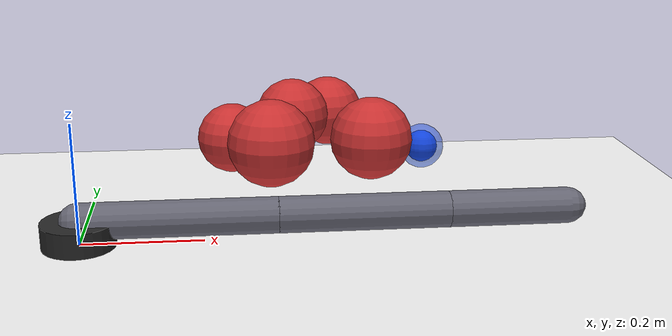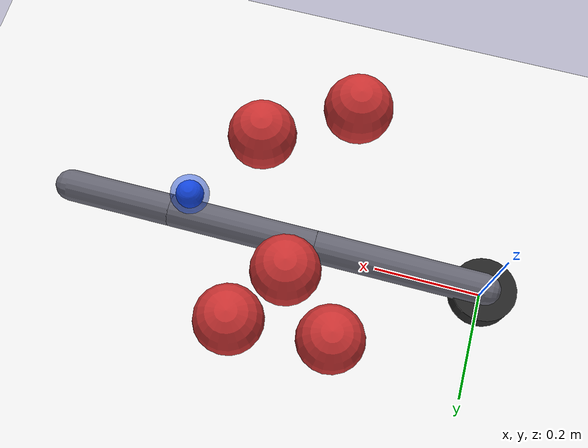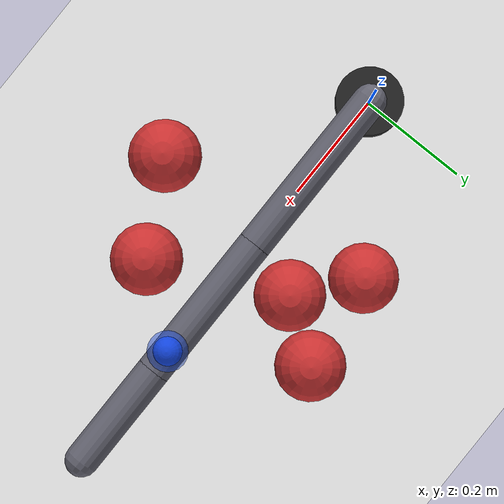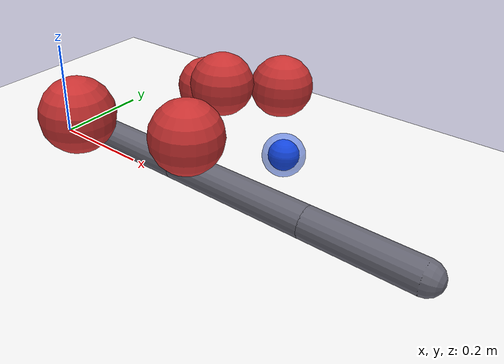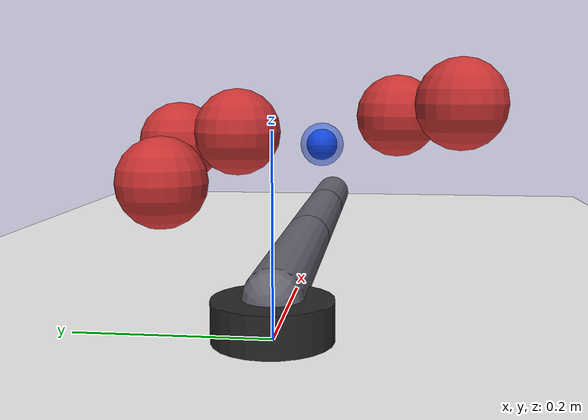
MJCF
<mujoco model="me5406_arm">
  <compiler angle="radian" autolimits="true"/>
  <option gravity="0 0 0" timestep="0.01" integrator="RK4"/>

  <default>
    <joint damping="1.0" armature="0.02" limited="true"/>
    <geom type="capsule" size="0.03" rgba="0.4 0.4 0.45 1"/>
    <motor ctrllimited="true" ctrlrange="-1 1"/>
  </default>

  <worldbody>
    <light pos="0 0 2"/>
    <geom type="plane" size="2 2 0.1" rgba="0.95 0.95 0.95 1"/>

    <body name="base" pos="0 0 0">
      <geom type="cylinder" size="0.06 0.04" rgba="0.15 0.15 0.15 1"/>

      <body name="link1" pos="0 0 0.04">
        <joint name="joint1" type="hinge" axis="0 0 1" range="-3.14 3.14"/>
        <geom fromto="0 0 0 0.32 0 0" name="link1_geom"/>

        <body name="link2" pos="0.32 0 0">
          <joint name="joint2" type="hinge" axis="0 1 0" range="-1.57 1.57"/>
          <geom fromto="0 0 0 0.28 0 0" name="link2_geom"/>

          <body name="link3" pos="0.28 0 0">
            <joint name="joint3" type="hinge" axis="0 1 0" range="-1.57 1.57"/>
            <geom fromto="0 0 0 0.2 0 0" name="link3_geom"/>

            <body name="ee" pos="0.2 0 0">
              <site name="ee_site" pos="0 0 0" size="0.02" rgba="0.1 0.7 0.1 1"/>
            </body>
          </body>
        </body>
      </body>
    </body>

    <body name="target" pos="0.55 0 0.15" mocap="true">
      <geom name="target_geom" type="sphere" size="0.035" contype="0" conaffinity="0" rgba="0.1 0.3 0.9 0.5"/>
      <site name="target_site" pos="0 0 0" size="0.025" rgba="0.1 0.3 0.9 1"/>
    </body>

    <body name="obstacle_0" pos="0.35 0.10 0.18" mocap="true">
      <geom name="obstacle_0_geom" type="sphere" size="0.06" rgba="0.8 0.2 0.2 1"/>
    </body>
    <body name="obstacle_1" pos="0.45 -0.12 0.2" mocap="true">
      <geom name="obstacle_1_geom" type="sphere" size="0.06" rgba="0.8 0.2 0.2 1"/>
    </body>
    <body name="obstacle_2" pos="0.25 0.18 0.12" mocap="true">
      <geom name="obstacle_2_geom" type="sphere" size="0.06" rgba="0.8 0.2 0.2 1"/>
    </body>
    <body name="obstacle_3" pos="0.42 0.2 0.16" mocap="true">
      <geom name="obstacle_3_geom" type="sphere" size="0.06" rgba="0.8 0.2 0.2 1"/>
    </body>
    <body name="obstacle_4" pos="0.30 -0.2 0.22" mocap="true">
      <geom name="obstacle_4_geom" type="sphere" size="0.06" rgba="0.8 0.2 0.2 1"/>
    </body>
  </worldbody>

  <actuator>
    <motor name="joint1_motor" joint="joint1" gear="35"/>
    <motor name="joint2_motor" joint="joint2" gear="30"/>
    <motor name="joint3_motor" joint="joint3" gear="25"/>
  </actuator>
</mujoco>
